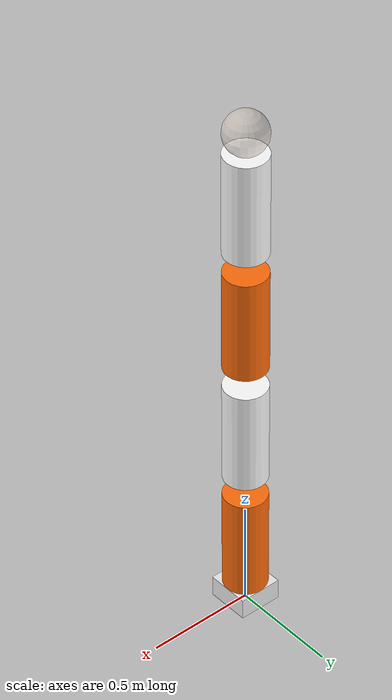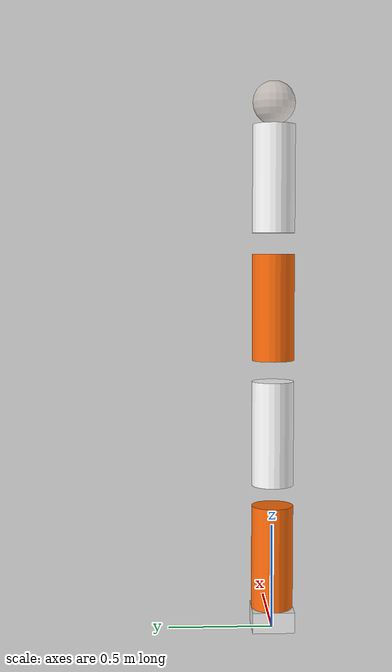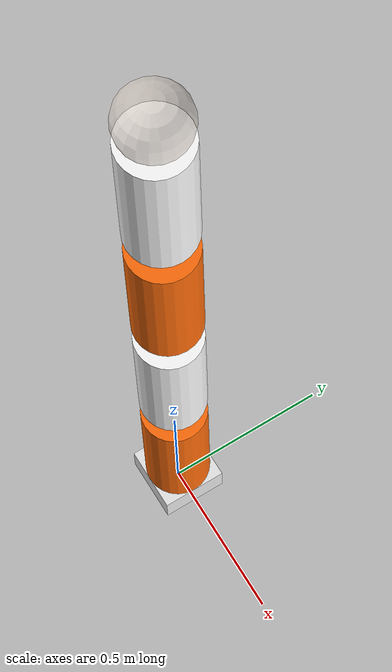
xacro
<?xml version="1.0"?>
<robot name="SimpleArm"  xmlns:xacro="http://www.ros.org/wiki/xacro">
  <link name="world"/>
  <xacro:property name="altura_base" value="0.1"/>
  <xacro:property name="largo" value="0.5"/>
  <xacro:property name="ancho" value="0.1"/>
  <xacro:property name="masa" value="5"/>
  <xacro:property name="delta" value="0.1"/>
  <xacro:property name="pi" value="3.14"/>

  <xacro:macro name="cuboid_inertia_def" params="x y z mass">
    <inertial>
      <origin xyz="0 0 ${z/2}" rpy="0 0 0"/>
      <mass value="${mass}"/>
      <inertia
        iyy="${mass*(z*z+x*x)/12.0}"
        ixx="${mass*(y*y+z*z)/12.0}"
        izz="${mass*(x*x+y*y)/12.0}"
        ixy="0.0" iyz="0.0" ixz="0.0"/>
    </inertial>
  </xacro:macro>

  <xacro:macro name="default_inertial" params="mass length radius">
    <inertial>
      <origin xyz="0 0 ${length/2}" rpy="0 0 0"/>
      <mass value="${mass}"/>
          <inertia ixx="${mass*(3.0*radius*radius+length*length)/12.0}"
             iyy="${mass*(3.0*radius*radius+length*length)/12.0}"
             izz="${mass*radius*radius/2.0}"
             ixy="0.0" iyz="0.0" ixz="0.0"/>
    </inertial>
  </xacro:macro>

  <xacro:include filename="$(find SimpleArm)/urdf/SimpleArm.gazebo" />

   <!-- Import Rviz colors -->
<xacro:include filename="$(find SimpleArm)/urdf/materials.xacro" />

  <link name="link0">
    <visual>
      <origin xyz="0 0 ${altura_base/2}" rpy="0 0 0"/>
      <geometry>
        <box size="0.2 0.2 ${altura_base}"/>
      </geometry>
    </visual>

    <collision>
      <origin xyz="0 0 ${altura_base/2}" rpy="0 0 0"/>
      <geometry>
        <box size="1 1 ${altura_base}"/>
      </geometry>
    </collision>

   <xacro:cuboid_inertia_def mass="1000" z="${altura_base}" x="1" y="1"/>
  </link>

  <link name="link1">
    <visual>
      <geometry>
        <cylinder radius="${ancho}" length="${largo}"/>
      </geometry>
      <origin xyz="0 0 ${largo/2}" rpy="0 0 0" />
      <material name="orange"/>
    </visual>

    <collision>
      <geometry>
         <cylinder radius="${ancho}" length="${largo}"/>
      </geometry>
      <origin xyz="0 0 ${largo/2}" rpy="0 0 0" />
    </collision>

    <xacro:default_inertial mass="${masa}" length="${largo}" radius="${ancho}"/>
  </link>

  <link name="link2">
    <visual>
      <geometry>
        <cylinder radius="${ancho}" length="${largo}"/>
      </geometry>
      <origin xyz="0 0 ${largo/2}" rpy="0 0 0" />
      <material name="white"/>
    </visual>

    <collision>
      <geometry>
         <cylinder radius="${ancho}" length="${largo}"/>
      </geometry>
      <origin xyz="0 0 ${largo/2}" rpy="0 0 0" />
    </collision>
    <xacro:default_inertial mass="${masa}" length="${largo}" radius="${ancho}"/>
  </link>

  <link name="link3">
    <visual>
      <geometry>
        <cylinder radius="${ancho}" length="${largo}"/>
      </geometry>
      <origin xyz="0 0 ${largo/2}" rpy="0 0 0" />
      <material name="orange"/>
    </visual>

    <collision>
      <geometry>
         <cylinder radius="${ancho}" length="${largo}"/>
      </geometry>
      <origin xyz="0 0 ${largo/2}" rpy="0 0 0" />
    </collision>
    <xacro:default_inertial mass="${masa}" length="${largo}" radius="${ancho}"/>
  </link>

  <link name="link4">
    <visual>
      <geometry>
        <cylinder radius="${ancho}" length="${largo}"/>
      </geometry>
      <origin xyz="0 0 ${largo/2}" rpy="0 0 0" />
      <material name="white"/>
    </visual>

    <collision>
      <geometry>
         <cylinder radius="${ancho}" length="${largo}"/>
      </geometry>
      <origin xyz="0 0 ${largo/2}" rpy="0 0 0" />
    </collision>
    <xacro:default_inertial mass="${masa}" length="${largo}" radius="${ancho}"/>
  </link>

  <link name="link5">
    <visual>
      <geometry>
        <sphere radius="${ancho}"/>
      </geometry>
      <origin xyz="0 0 0" rpy="0 0 0" />
      <material name="brown"/>
    </visual>

    <collision>
      <geometry>
        <sphere radius="${ancho}"/>
      </geometry>
      <origin xyz="0 0 0" rpy="0 0 0" />
    </collision>
    <xacro:default_inertial mass="${masa/20}" length="${ancho}" radius="${ancho}"/>
  </link>

  <joint name="joint0" type="fixed">
    <parent link="world"/>
    <child link="link0"/>
  </joint>

  <joint name="joint1" type="continuous">
    <parent link="link0"/>
    <child link="link1"/>
    <origin xyz="0 0 ${altura_base}" rpy="0 0 0" />
    <axis xyz="0 0 1"/>
    <dynamics damping="0.6"/>
     <limit effort="200" velocity="20" />
  </joint>

  <joint name="joint2" type="revolute">
    <parent link="link1"/>
    <child link="link2"/>
    <origin xyz="0 0 ${largo+delta}" rpy="0 0 0" />
    <axis xyz="0 1 0"/>
    <dynamics damping="0.6"/>
    <limit effort="200" velocity="20" lower="${-pi/2}" upper="${pi/2}" />
  </joint>

  <joint name="joint3" type="revolute">
    <parent link="link2"/>
    <child link="link3"/>
    <origin xyz="0 0 ${largo+delta}" rpy="0 0 0" />
    <axis xyz="0 1 0"/>
    <dynamics damping="0.6"/>
    <limit effort="90" velocity="20" lower="${-pi/2}" upper="${pi/2}" />
  </joint>

  <joint name="joint4" type="revolute">
    <parent link="link3"/>
    <child link="link4"/>
    <origin xyz="0 0 ${largo+delta}" rpy="0 0 0" />
    <axis xyz="0 1 0"/>
    <dynamics damping="0.6"/>
    <limit effort="40" velocity="20" lower="${-pi/2}" upper="${pi/2}" />
  </joint>

  <joint name="joint5" type="fixed">
    <parent link="link4"/>
    <child link="link5"/>
    <origin xyz="0 0 ${largo+ancho}" rpy="0 0 0" />
    </joint>

  <!-- Transmission -->
  <transmission name="tran1">
    <type>transmission_interface/SimpleTransmission</type>
    <joint name="joint1">
      <hardwareInterface>hardware_interface/EffortJointInterface</hardwareInterface>
    </joint>
    <actuator name="yaw">
      <hardwareInterface>hardware_interface/EffortJointInterface</hardwareInterface>
      <mechanicalReduction>1</mechanicalReduction>
    </actuator>
  </transmission>

  <transmission name="tran2">
    <type>transmission_interface/SimpleTransmission</type>
    <joint name="joint2">
      <hardwareInterface>hardware_interface/EffortJointInterface</hardwareInterface>
    </joint>
    <actuator name="pitch1">
      <hardwareInterface>hardware_interface/EffortJointInterface</hardwareInterface>
      <mechanicalReduction>1</mechanicalReduction>
    </actuator>
</transmission>
<transmission name="tran3">
    <type>transmission_interface/SimpleTransmission</type>
    <joint name="joint3">
      <hardwareInterface>hardware_interface/EffortJointInterface</hardwareInterface>
    </joint>
    <actuator name="pitch2">
      <hardwareInterface>hardware_interface/EffortJointInterface</hardwareInterface>
      <mechanicalReduction>1</mechanicalReduction>
    </actuator>
  </transmission>

  <transmission name="tran4">
    <type>transmission_interface/SimpleTransmission</type>
    <joint name="joint4">
      <hardwareInterface>hardware_interface/EffortJointInterface</hardwareInterface>
    </joint>
    <actuator name="pitch3">
      <hardwareInterface>hardware_interface/EffortJointInterface</hardwareInterface>
      <mechanicalReduction>1</mechanicalReduction>
    </actuator>
</transmission>

</robot>

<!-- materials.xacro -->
<robot>

  <material name="black">
    <color rgba="0.0 0.0 0.0 1.0"/>
  </material>

  <material name="blue">
    <color rgba="0.0 0.0 0.8 1.0"/>
  </material>

  <material name="green">
    <color rgba="0.0 0.8 0.0 1.0"/>
  </material>

  <material name="grey">
    <color rgba="0.2 0.2 0.2 1.0"/>
  </material>

  <material name="orange">
    <color rgba="${255/255} ${108/255} ${10/255} 1.0"/>
  </material>

  <material name="brown">
    <color rgba="${222/255} ${207/255} ${195/255} 0.5"/>
  </material>

  <material name="red">
    <color rgba="0.8 0.0 0.0 1.0"/>
  </material>

  <material name="white">
    <color rgba="1.0 1.0 1.0 1.0"/>
  </material>

</robot>
